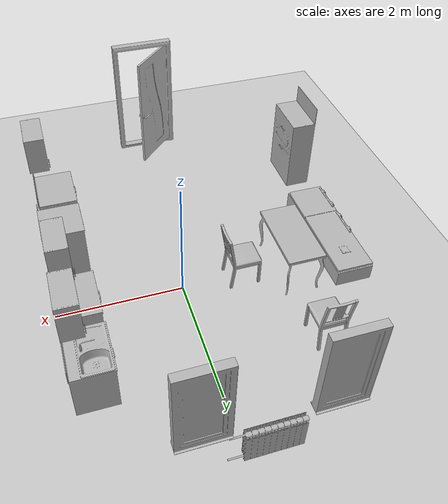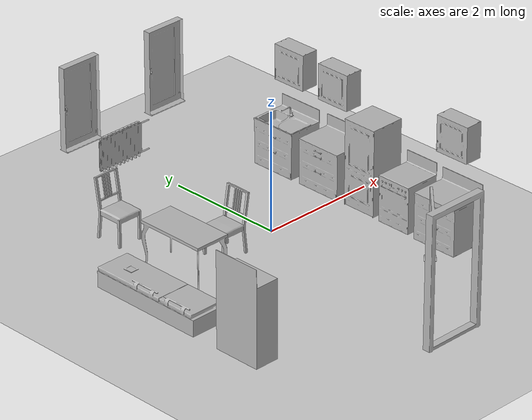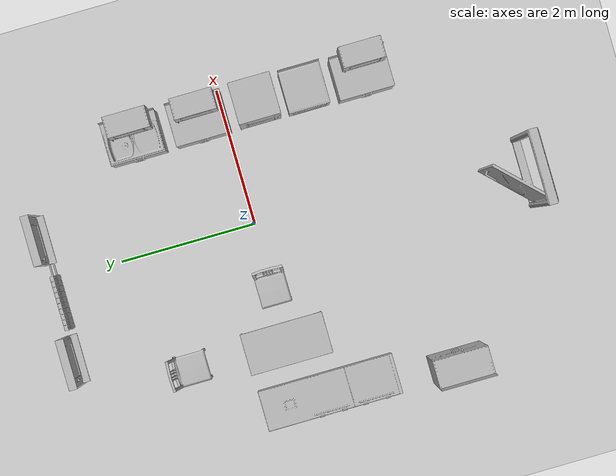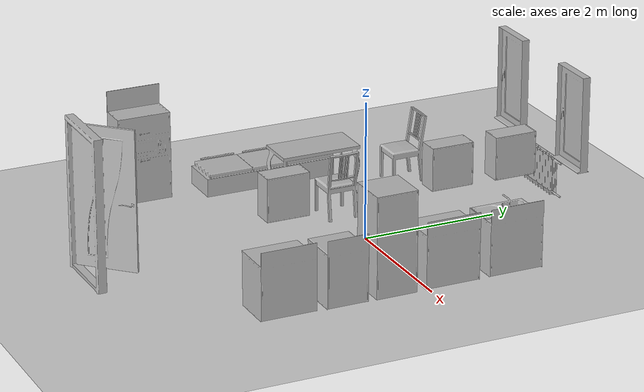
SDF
<sdf version="1.4">
 <world name="default">
  <light name="sun" type="directional">
   <pose>0 0 10 0 -0 0</pose>
   <diffuse>0.8 0.8 0.8 1</diffuse>
   <specular>0.2 0.2 0.2 1</specular>
   <attenuation>
    <range>1000</range>
    <constant>0.9</constant>
    <linear>0.01</linear>
    <quadratic>0.001</quadratic>
   </attenuation>
   <direction>-0.5 0.1 -0.9</direction>
  </light>
  <model name="ground_plane">
   <static>1</static>
   <link name="link">
    <collision name="collision">
     <geometry><plane><normal>0 0 1</normal><size>100 100</size></plane></geometry>
     <surface><friction><ode><mu>100</mu><mu2>50</mu2></ode></friction></surface>
    </collision>
    <visual name="visual">
     <cast_shadows>0</cast_shadows>
     <geometry><plane><normal>0 0 1</normal><size>100 100</size></plane></geometry>
     <material>
      <script><uri>file://media/materials/scripts/gazebo.material</uri><name>Gazebo/Grey</name></script>
     </material>
    </visual>
    <velocity_decay><linear>0</linear><angular>0</angular></velocity_decay>
   </link>
  </model>
  <physics type="ode">
   <max_step_size>0.001</max_step_size>
   <real_time_factor>1</real_time_factor>
   <real_time_update_rate>1000</real_time_update_rate>
   <gravity>0 0 -9.8</gravity>
  </physics>
  <scene><ambient>0.4 0.4 0.4 1</ambient><background>0.7 0.7 0.7 1</background><shadows>1</shadows></scene>
  <spherical_coordinates>
   <surface_model>EARTH_WGS84</surface_model>
   <latitude_deg>0</latitude_deg>
   <longitude_deg>0</longitude_deg>
   <elevation>0</elevation>
   <heading_deg>0</heading_deg>
  </spherical_coordinates>
  <model name="126_0">
   <pose>-1.1478 2.92085 0.81 0 0 -1.5708</pose>
   <static>1</static>
   <link name="link">
    <collision name="collision"><geometry><box><size>0.175 0.7 2</size></box></geometry></collision>
    <visual name="visual"><geometry><mesh><uri>model://126/126.dae</uri></mesh></geometry></visual>
    <velocity_decay><linear>0</linear><angular>0</angular></velocity_decay>
   </link>
  </model>
  <model name="126_1">
   <pose>0.580207 2.91598 0.81 0 0 -1.5708</pose>
   <static>1</static>
   <link name="link">
    <collision name="collision"><geometry><box><size>0.175 0.7 2</size></box></geometry></collision>
    <visual name="visual"><geometry><mesh><uri>model://126/126.dae</uri></mesh></geometry></visual>
    <velocity_decay><linear>0</linear><angular>0</angular></velocity_decay>
   </link>
  </model>
  <model name="769_0">
   <pose>-0.357209 -3.9628 0 0 0 -1.5708</pose>
   <static>1</static>
   <link name="link">
    <collision name="collision"><geometry><box><size>0.739999 1.06003 2</size></box></geometry></collision>
    <visual name="visual"><geometry><mesh><uri>model://769/769.dae</uri></mesh></geometry></visual>
    <velocity_decay><linear>0</linear><angular>0</angular></velocity_decay>
   </link>
  </model>
  <model name="663_0">
   <pose>1.62394 1.3104 0.01 0 0 -3.14159</pose>
   <static>1</static>
   <link name="link">
    <collision name="collision"><geometry><box><size>0.639997 0.800038 2</size></box></geometry></collision>
    <visual name="visual"><geometry><mesh><uri>model://663/663.dae</uri></mesh></geometry></visual>
    <velocity_decay><linear>0</linear><angular>0</angular></velocity_decay>
   </link>
  </model>
  <model name="657_0">
   <pose>1.63218 0.350403 0.01 0 0 -3.14159</pose>
   <static>1</static>
   <link name="link">
    <collision name="collision"><geometry><box><size>0.639997 0.800038 2</size></box></geometry></collision>
    <visual name="visual"><geometry><mesh><uri>model://657/657.dae</uri></mesh></geometry></visual>
    <velocity_decay><linear>0</linear><angular>0</angular></velocity_decay>
   </link>
  </model>
  <model name="666_0">
   <pose>1.64057 -0.489597 0.01 0 0 -3.14159</pose>
   <static>1</static>
   <link name="link">
    <collision name="collision"><geometry><box><size>0.610464 0.6 2</size></box></geometry></collision>
    <visual name="visual"><geometry><mesh><uri>model://666/666.dae</uri></mesh></geometry></visual>
    <velocity_decay><linear>0</linear><angular>0</angular></velocity_decay>
   </link>
  </model>
  <model name="662_0">
   <pose>1.64113 -1.2096 0.01 0 0 -3.14159</pose>
   <static>1</static>
   <link name="link">
    <collision name="collision"><geometry><box><size>0.639933 0.600014 2</size></box></geometry></collision>
    <visual name="visual"><geometry><mesh><uri>model://662/662.dae</uri></mesh></geometry></visual>
    <velocity_decay><linear>0</linear><angular>0</angular></velocity_decay>
   </link>
  </model>
  <model name="658_0">
   <pose>-2.71582 -2.2536 0.01 0 -0 0</pose>
   <static>1</static>
   <link name="link">
    <collision name="collision"><geometry><box><size>0.44 0.8 2</size></box></geometry></collision>
    <visual name="visual"><geometry><mesh><uri>model://658/658.dae</uri></mesh></geometry></visual>
    <velocity_decay><linear>0</linear><angular>0</angular></velocity_decay>
   </link>
  </model>
  <model name="657_1">
   <pose>1.61905 -2.0496 0.01 0 0 -3.14159</pose>
   <static>1</static>
   <link name="link">
    <collision name="collision"><geometry><box><size>0.639997 0.800038 2</size></box></geometry></collision>
    <visual name="visual"><geometry><mesh><uri>model://657/657.dae</uri></mesh></geometry></visual>
    <velocity_decay><linear>0</linear><angular>0</angular></velocity_decay>
   </link>
  </model>
  <model name="510_0">
   <pose>-0.235806 2.93628 0.15 0 -0 1.5708</pose>
   <static>1</static>
   <link name="link">
    <collision name="collision"><geometry><box><size>0.1 0.99977 2</size></box></geometry></collision>
    <visual name="visual"><geometry><mesh><uri>model://510/510.dae</uri></mesh></geometry></visual>
    <velocity_decay><linear>0</linear><angular>0</angular></velocity_decay>
   </link>
  </model>
  <model name="s__715_0">
   <pose>-1.7598 0.026401 0.01 0 -0 0</pose>
   <static>1</static>
   <link name="link">
    <collision name="collision"><geometry><box><size>0.6 1.2 2</size></box></geometry></collision>
    <visual name="visual"><geometry><mesh><uri>model://s__715/s__715.dae</uri></mesh></geometry></visual>
    <velocity_decay><linear>0</linear><angular>0</angular></velocity_decay>
   </link>
  </model>
  <model name="s__769_0">
   <pose>-0.9318 0.002401 0.01 0 0 -3.14159</pose>
   <static>1</static>
   <link name="link">
    <collision name="collision"><geometry><box><size>0.549561 0.44 2</size></box></geometry></collision>
    <visual name="visual"><geometry><mesh><uri>model://s__769/s__769.dae</uri></mesh></geometry></visual>
    <velocity_decay><linear>0</linear><angular>0</angular></velocity_decay>
   </link>
  </model>
  <model name="s__769_1">
   <pose>-1.7478 1.46251 0.01 0 0 -1.5708</pose>
   <static>1</static>
   <link name="link">
    <collision name="collision"><geometry><box><size>0.549561 0.44 2</size></box></geometry></collision>
    <visual name="visual"><geometry><mesh><uri>model://s__769/s__769.dae</uri></mesh></geometry></visual>
    <velocity_decay><linear>0</linear><angular>0</angular></velocity_decay>
   </link>
  </model>
  <model name="102_0">
   <pose>-2.63347 -1.3776 0.01 0 -0 0</pose>
   <static>1</static>
   <link name="link">
    <collision name="collision"><geometry><box><size>0.685405 0.599801 2</size></box></geometry></collision>
    <visual name="visual"><geometry><mesh><uri>model://102/102.dae</uri></mesh></geometry></visual>
    <velocity_decay><linear>0</linear><angular>0</angular></velocity_decay>
   </link>
  </model>
  <model name="667_0">
   <pose>1.7675 1.26341 1.4 0 0 -3.14159</pose>
   <static>1</static>
   <link name="link">
    <collision name="collision"><geometry><box><size>0.320464 0.6 2</size></box></geometry></collision>
    <visual name="visual"><geometry><mesh><uri>model://667/667.dae</uri></mesh></geometry></visual>
    <velocity_decay><linear>0</linear><angular>0</angular></velocity_decay>
   </link>
  </model>
  <model name="667_1">
   <pose>1.7567 0.330206 1.4 0 0 -3.14159</pose>
   <static>1</static>
   <link name="link">
    <collision name="collision"><geometry><box><size>0.320464 0.6 2</size></box></geometry></collision>
    <visual name="visual"><geometry><mesh><uri>model://667/667.dae</uri></mesh></geometry></visual>
    <velocity_decay><linear>0</linear><angular>0</angular></velocity_decay>
   </link>
  </model>
  <model name="667_2">
   <pose>1.79409 -2.0616 1.4 0 0 -3.14159</pose>
   <static>1</static>
   <link name="link">
    <collision name="collision"><geometry><box><size>0.320464 0.6 2</size></box></geometry></collision>
    <visual name="visual"><geometry><mesh><uri>model://667/667.dae</uri></mesh></geometry></visual>
    <velocity_decay><linear>0</linear><angular>0</angular></velocity_decay>
   </link>
  </model>
 </world>
</sdf>
